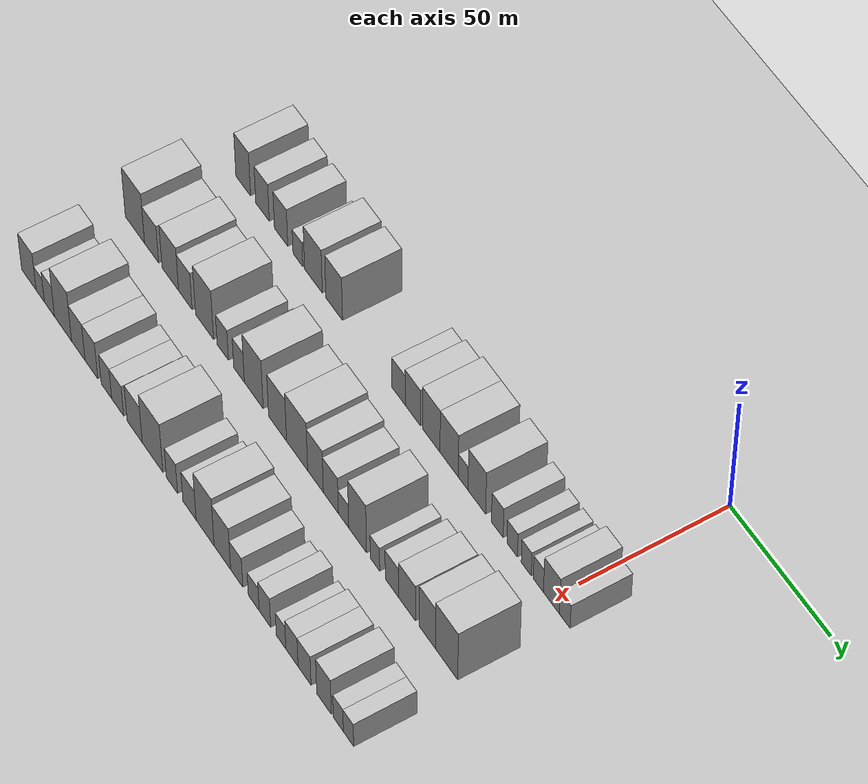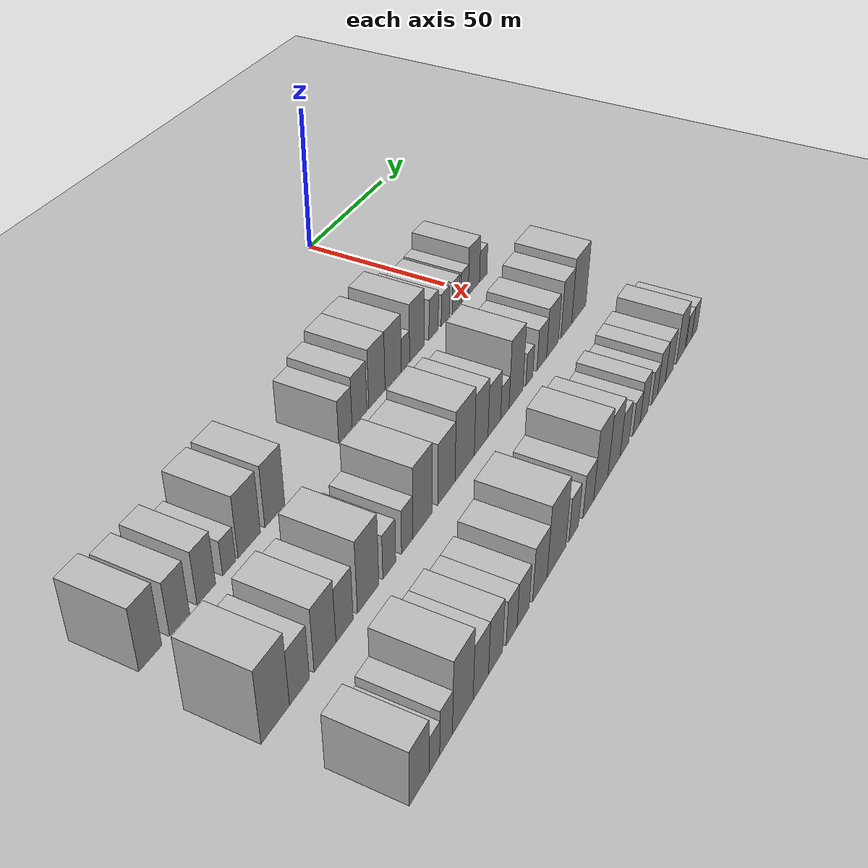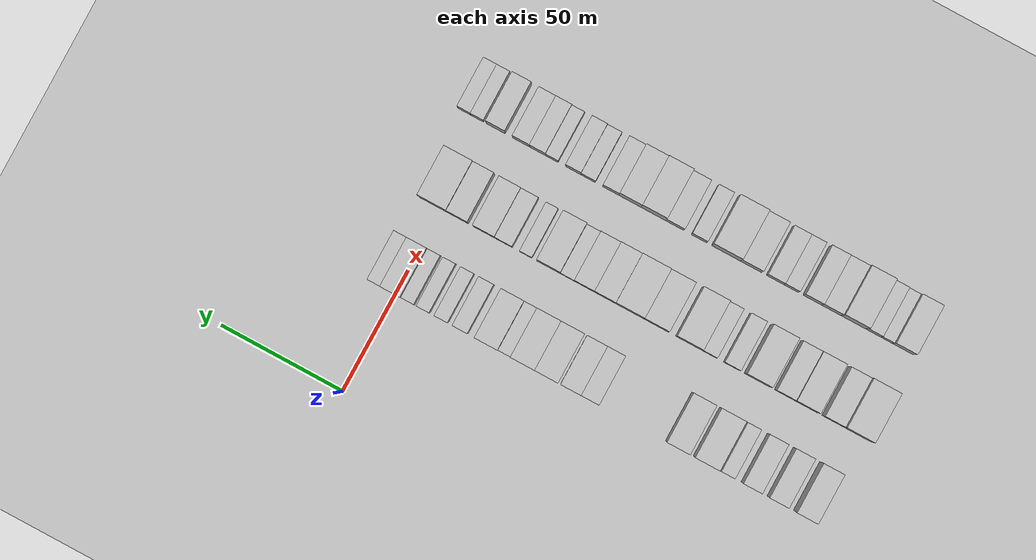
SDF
<sdf version="1.6">
 <world name="default">
  <include><name>ground_plane_1</name><uri>model://HANNAS_ground_plane</uri></include>
  <include>
   <name>ground_plane_2</name>
   <uri>model://HANNAS_ground_plane</uri>
   <pose>100 0 0  0 0 0</pose>
  </include>
  <model name="building_20">
   <static>1</static>
   <pose>50.0000 -167.8782 0 0.000000 0.000000 0.000000</pose>
   <link name="link">
    <pose>0 0 10.50 0 0 0</pose>
    <collision name="collision"><geometry><box><size>20.0000 8.5677 21.0000</size></box></geometry></collision>
    <visual name="visual">
     <cast_shadows>0</cast_shadows>
     <geometry><box><size>20.0000 8.5677 21.0000</size></box></geometry>
     <material>
      <script>
       <uri>model://HANNAS_wall/materials/scripts</uri>
       <uri>model://HANNAS_wall/materials/textures</uri>
       <name>vrc/HANNAS_wall</name>
      </script>
     </material>
    </visual>
   </link>
  </model>
  <model name="building_21">
   <static>1</static>
   <pose>50.0000 -156.6761 0 0.000000 0.000000 0.000000</pose>
   <link name="link">
    <pose>0 0 9.00 0 0 0</pose>
    <collision name="collision"><geometry><box><size>20.0000 7.8365 18.0000</size></box></geometry></collision>
    <visual name="visual">
     <cast_shadows>0</cast_shadows>
     <geometry><box><size>20.0000 7.8365 18.0000</size></box></geometry>
     <material>
      <script>
       <uri>model://HANNAS_wall/materials/scripts</uri>
       <uri>model://HANNAS_wall/materials/textures</uri>
       <name>vrc/HANNAS_wall</name>
      </script>
     </material>
    </visual>
   </link>
  </model>
  <model name="building_22">
   <static>1</static>
   <pose>50.0000 -145.9216 0 0.000000 0.000000 0.000000</pose>
   <link name="link">
    <pose>0 0 9.00 0 0 0</pose>
    <collision name="collision"><geometry><box><size>20.0000 7.6724 18.0000</size></box></geometry></collision>
    <visual name="visual">
     <cast_shadows>0</cast_shadows>
     <geometry><box><size>20.0000 7.6724 18.0000</size></box></geometry>
     <material>
      <script>
       <uri>model://HANNAS_wall/materials/scripts</uri>
       <uri>model://HANNAS_wall/materials/textures</uri>
       <name>vrc/HANNAS_wall</name>
      </script>
     </material>
    </visual>
   </link>
  </model>
  <model name="building_23">
   <static>1</static>
   <pose>50.0000 -136.2911 0 0.000000 0.000000 0.000000</pose>
   <link name="link">
    <pose>0 0 6.00 0 0 0</pose>
    <collision name="collision"><geometry><box><size>20.0000 5.5886 12.0000</size></box></geometry></collision>
    <visual name="visual">
     <cast_shadows>0</cast_shadows>
     <geometry><box><size>20.0000 5.5886 12.0000</size></box></geometry>
     <material>
      <script>
       <uri>model://HANNAS_wall/materials/scripts</uri>
       <uri>model://HANNAS_wall/materials/textures</uri>
       <name>vrc/HANNAS_wall</name>
      </script>
     </material>
    </visual>
   </link>
  </model>
  <model name="building_24">
   <static>1</static>
   <pose>50.0000 -127.4564 0 0.000000 0.000000 0.000000</pose>
   <link name="link">
    <pose>0 0 10.50 0 0 0</pose>
    <collision name="collision"><geometry><box><size>20.0000 10.0809 21.0000</size></box></geometry></collision>
    <visual name="visual">
     <cast_shadows>0</cast_shadows>
     <geometry><box><size>20.0000 10.0809 21.0000</size></box></geometry>
     <material>
      <script>
       <uri>model://HANNAS_wall/materials/scripts</uri>
       <uri>model://HANNAS_wall/materials/textures</uri>
       <name>vrc/HANNAS_wall</name>
      </script>
     </material>
    </visual>
   </link>
  </model>
  <model name="building_25">
   <static>1</static>
   <pose>50.0000 -115.7088 0 0.000000 0.000000 0.000000</pose>
   <link name="link">
    <pose>0 0 10.50 0 0 0</pose>
    <collision name="collision"><geometry><box><size>20.0000 9.4143 21.0000</size></box></geometry></collision>
    <visual name="visual">
     <cast_shadows>0</cast_shadows>
     <geometry><box><size>20.0000 9.4143 21.0000</size></box></geometry>
     <material>
      <script>
       <uri>model://HANNAS_wall/materials/scripts</uri>
       <uri>model://HANNAS_wall/materials/textures</uri>
       <name>vrc/HANNAS_wall</name>
      </script>
     </material>
    </visual>
   </link>
  </model>
  <model name="building_26">
   <static>1</static>
   <pose>50.0000 -79.9484 0 0.000000 0.000000 0.000000</pose>
   <link name="link">
    <pose>0 0 7.50 0 0 0</pose>
    <collision name="collision"><geometry><box><size>20.0000 7.3688 15.0000</size></box></geometry></collision>
    <visual name="visual">
     <cast_shadows>0</cast_shadows>
     <geometry><box><size>20.0000 7.3688 15.0000</size></box></geometry>
     <material>
      <script>
       <uri>model://HANNAS_wall/materials/scripts</uri>
       <uri>model://HANNAS_wall/materials/textures</uri>
       <name>vrc/HANNAS_wall</name>
      </script>
     </material>
    </visual>
   </link>
  </model>
  <model name="building_27">
   <static>1</static>
   <pose>50.0000 -72.0861 0 0.000000 0.000000 0.000000</pose>
   <link name="link">
    <pose>0 0 9.00 0 0 0</pose>
    <collision name="collision"><geometry><box><size>20.0000 8.3559 18.0000</size></box></geometry></collision>
    <visual name="visual">
     <cast_shadows>0</cast_shadows>
     <geometry><box><size>20.0000 8.3559 18.0000</size></box></geometry>
     <material>
      <script>
       <uri>model://HANNAS_wall/materials/scripts</uri>
       <uri>model://HANNAS_wall/materials/textures</uri>
       <name>vrc/HANNAS_wall</name>
      </script>
     </material>
    </visual>
   </link>
  </model>
  <model name="building_28">
   <static>1</static>
   <pose>50.0000 -62.1377 0 0.000000 0.000000 0.000000</pose>
   <link name="link">
    <pose>0 0 10.50 0 0 0</pose>
    <collision name="collision"><geometry><box><size>20.0000 9.5409 21.0000</size></box></geometry></collision>
    <visual name="visual">
     <cast_shadows>0</cast_shadows>
     <geometry><box><size>20.0000 9.5409 21.0000</size></box></geometry>
     <material>
      <script>
       <uri>model://HANNAS_wall/materials/scripts</uri>
       <uri>model://HANNAS_wall/materials/textures</uri>
       <name>vrc/HANNAS_wall</name>
      </script>
     </material>
    </visual>
   </link>
  </model>
  <model name="building_29">
   <static>1</static>
   <pose>50.0000 -52.4496 0 0.000000 0.000000 0.000000</pose>
   <link name="link">
    <pose>0 0 10.50 0 0 0</pose>
    <collision name="collision"><geometry><box><size>20.0000 9.8351 21.0000</size></box></geometry></collision>
    <visual name="visual">
     <cast_shadows>0</cast_shadows>
     <geometry><box><size>20.0000 9.8351 21.0000</size></box></geometry>
     <material>
      <script>
       <uri>model://HANNAS_wall/materials/scripts</uri>
       <uri>model://HANNAS_wall/materials/textures</uri>
       <name>vrc/HANNAS_wall</name>
      </script>
     </material>
    </visual>
   </link>
  </model>
  <model name="building_30">
   <static>1</static>
   <pose>50.0000 -44.9440 0 0.000000 0.000000 0.000000</pose>
   <link name="link">
    <pose>0 0 6.00 0 0 0</pose>
    <collision name="collision"><geometry><box><size>20.0000 5.1762 12.0000</size></box></geometry></collision>
    <visual name="visual">
     <cast_shadows>0</cast_shadows>
     <geometry><box><size>20.0000 5.1762 12.0000</size></box></geometry>
     <material>
      <script>
       <uri>model://HANNAS_wall/materials/scripts</uri>
       <uri>model://HANNAS_wall/materials/textures</uri>
       <name>vrc/HANNAS_wall</name>
      </script>
     </material>
    </visual>
   </link>
  </model>
  <model name="building_31">
   <static>1</static>
   <pose>50.0000 -37.6500 0 0.000000 0.000000 0.000000</pose>
   <link name="link">
    <pose>0 0 10.50 0 0 0</pose>
    <collision name="collision"><geometry><box><size>20.0000 9.4118 21.0000</size></box></geometry></collision>
    <visual name="visual">
     <cast_shadows>0</cast_shadows>
     <geometry><box><size>20.0000 9.4118 21.0000</size></box></geometry>
     <material>
      <script>
       <uri>model://HANNAS_wall/materials/scripts</uri>
       <uri>model://HANNAS_wall/materials/textures</uri>
       <name>vrc/HANNAS_wall</name>
      </script>
     </material>
    </visual>
   </link>
  </model>
  <model name="building_32">
   <static>1</static>
   <pose>50.0000 -26.8472 0 0.000000 0.000000 0.000000</pose>
   <link name="link">
    <pose>0 0 7.50 0 0 0</pose>
    <collision name="collision"><geometry><box><size>20.0000 6.1937 15.0000</size></box></geometry></collision>
    <visual name="visual">
     <cast_shadows>0</cast_shadows>
     <geometry><box><size>20.0000 6.1937 15.0000</size></box></geometry>
     <material>
      <script>
       <uri>model://HANNAS_wall/materials/scripts</uri>
       <uri>model://HANNAS_wall/materials/textures</uri>
       <name>vrc/HANNAS_wall</name>
      </script>
     </material>
    </visual>
   </link>
  </model>
  <model name="building_33">
   <static>1</static>
   <pose>50.0000 -19.0019 0 0.000000 0.000000 0.000000</pose>
   <link name="link">
    <pose>0 0 6.00 0 0 0</pose>
    <collision name="collision"><geometry><box><size>20.0000 5.4968 12.0000</size></box></geometry></collision>
    <visual name="visual">
     <cast_shadows>0</cast_shadows>
     <geometry><box><size>20.0000 5.4968 12.0000</size></box></geometry>
     <material>
      <script>
       <uri>model://HANNAS_wall/materials/scripts</uri>
       <uri>model://HANNAS_wall/materials/textures</uri>
       <name>vrc/HANNAS_wall</name>
      </script>
     </material>
    </visual>
   </link>
  </model>
  <model name="building_34">
   <static>1</static>
   <pose>50.0000 -11.6341 0 0.000000 0.000000 0.000000</pose>
   <link name="link">
    <pose>0 0 6.00 0 0 0</pose>
    <collision name="collision"><geometry><box><size>20.0000 5.2390 12.0000</size></box></geometry></collision>
    <visual name="visual">
     <cast_shadows>0</cast_shadows>
     <geometry><box><size>20.0000 5.2390 12.0000</size></box></geometry>
     <material>
      <script>
       <uri>model://HANNAS_wall/materials/scripts</uri>
       <uri>model://HANNAS_wall/materials/textures</uri>
       <name>vrc/HANNAS_wall</name>
      </script>
     </material>
    </visual>
   </link>
  </model>
  <model name="building_35">
   <static>1</static>
   <pose>50.0000 -5.3701 0 0.000000 0.000000 0.000000</pose>
   <link name="link">
    <pose>0 0 6.00 0 0 0</pose>
    <collision name="collision"><geometry><box><size>20.0000 5.2889 12.0000</size></box></geometry></collision>
    <visual name="visual">
     <cast_shadows>0</cast_shadows>
     <geometry><box><size>20.0000 5.2889 12.0000</size></box></geometry>
     <material>
      <script>
       <uri>model://HANNAS_wall/materials/scripts</uri>
       <uri>model://HANNAS_wall/materials/textures</uri>
       <name>vrc/HANNAS_wall</name>
      </script>
     </material>
    </visual>
   </link>
  </model>
  <model name="building_36">
   <static>1</static>
   <pose>50.0000 1.3845 0 0.000000 0.000000 0.000000</pose>
   <link name="link">
    <pose>0 0 9.00 0 0 0</pose>
    <collision name="collision"><geometry><box><size>20.0000 8.2204 18.0000</size></box></geometry></collision>
    <visual name="visual">
     <cast_shadows>0</cast_shadows>
     <geometry><box><size>20.0000 8.2204 18.0000</size></box></geometry>
     <material>
      <script>
       <uri>model://HANNAS_wall/materials/scripts</uri>
       <uri>model://HANNAS_wall/materials/textures</uri>
       <name>vrc/HANNAS_wall</name>
      </script>
     </material>
    </visual>
   </link>
  </model>
  <model name="building_37">
   <static>1</static>
   <pose>50.0000 8.2533 0 0.000000 0.000000 0.000000</pose>
   <link name="link">
    <pose>0 0 6.00 0 0 0</pose>
    <collision name="collision"><geometry><box><size>20.0000 5.5172 12.0000</size></box></geometry></collision>
    <visual name="visual">
     <cast_shadows>0</cast_shadows>
     <geometry><box><size>20.0000 5.5172 12.0000</size></box></geometry>
     <material>
      <script>
       <uri>model://HANNAS_wall/materials/scripts</uri>
       <uri>model://HANNAS_wall/materials/textures</uri>
       <name>vrc/HANNAS_wall</name>
      </script>
     </material>
    </visual>
   </link>
  </model>
  <model name="building_99">
   <static>1</static>
   <pose>85.0000 -170.3555 0 0.000000 0.000000 0.000000</pose>
   <link name="link">
    <pose>0 0 12.00 0 0 0</pose>
    <collision name="collision"><geometry><box><size>20.0000 11.4034 24.0000</size></box></geometry></collision>
    <visual name="visual">
     <cast_shadows>0</cast_shadows>
     <geometry><box><size>20.0000 11.4034 24.0000</size></box></geometry>
     <material>
      <script>
       <uri>model://HANNAS_wall/materials/scripts</uri>
       <uri>model://HANNAS_wall/materials/textures</uri>
       <name>vrc/HANNAS_wall</name>
      </script>
     </material>
    </visual>
   </link>
  </model>
  <model name="building_100">
   <static>1</static>
   <pose>85.0000 -160.4917 0 0.000000 0.000000 0.000000</pose>
   <link name="link">
    <pose>0 0 9.00 0 0 0</pose>
    <collision name="collision"><geometry><box><size>20.0000 8.3244 18.0000</size></box></geometry></collision>
    <visual name="visual">
     <cast_shadows>0</cast_shadows>
     <geometry><box><size>20.0000 8.3244 18.0000</size></box></geometry>
     <material>
      <script>
       <uri>model://HANNAS_wall/materials/scripts</uri>
       <uri>model://HANNAS_wall/materials/textures</uri>
       <name>vrc/HANNAS_wall</name>
      </script>
     </material>
    </visual>
   </link>
  </model>
  <model name="building_101">
   <static>1</static>
   <pose>85.0000 -149.4992 0 0.000000 0.000000 0.000000</pose>
   <link name="link">
    <pose>0 0 10.50 0 0 0</pose>
    <collision name="collision"><geometry><box><size>20.0000 9.6605 21.0000</size></box></geometry></collision>
    <visual name="visual">
     <cast_shadows>0</cast_shadows>
     <geometry><box><size>20.0000 9.6605 21.0000</size></box></geometry>
     <material>
      <script>
       <uri>model://HANNAS_wall/materials/scripts</uri>
       <uri>model://HANNAS_wall/materials/textures</uri>
       <name>vrc/HANNAS_wall</name>
      </script>
     </material>
    </visual>
   </link>
  </model>
  <model name="building_102">
   <static>1</static>
   <pose>85.0000 -140.7256 0 0.000000 0.000000 0.000000</pose>
   <link name="link">
    <pose>0 0 9.00 0 0 0</pose>
    <collision name="collision"><geometry><box><size>20.0000 7.8868 18.0000</size></box></geometry></collision>
    <visual name="visual">
     <cast_shadows>0</cast_shadows>
     <geometry><box><size>20.0000 7.8868 18.0000</size></box></geometry>
     <material>
      <script>
       <uri>model://HANNAS_wall/materials/scripts</uri>
       <uri>model://HANNAS_wall/materials/textures</uri>
       <name>vrc/HANNAS_wall</name>
      </script>
     </material>
    </visual>
   </link>
  </model>
  <model name="building_103">
   <static>1</static>
   <pose>85.0000 -129.5812 0 0.000000 0.000000 0.000000</pose>
   <link name="link">
    <pose>0 0 12.00 0 0 0</pose>
    <collision name="collision"><geometry><box><size>20.0000 10.4021 24.0000</size></box></geometry></collision>
    <visual name="visual">
     <cast_shadows>0</cast_shadows>
     <geometry><box><size>20.0000 10.4021 24.0000</size></box></geometry>
     <material>
      <script>
       <uri>model://HANNAS_wall/materials/scripts</uri>
       <uri>model://HANNAS_wall/materials/textures</uri>
       <name>vrc/HANNAS_wall</name>
      </script>
     </material>
    </visual>
   </link>
  </model>
  <model name="building_104">
   <static>1</static>
   <pose>85.0000 -119.1143 0 0.000000 0.000000 0.000000</pose>
   <link name="link">
    <pose>0 0 7.50 0 0 0</pose>
    <collision name="collision"><geometry><box><size>20.0000 6.5318 15.0000</size></box></geometry></collision>
    <visual name="visual">
     <cast_shadows>0</cast_shadows>
     <geometry><box><size>20.0000 6.5318 15.0000</size></box></geometry>
     <material>
      <script>
       <uri>model://HANNAS_wall/materials/scripts</uri>
       <uri>model://HANNAS_wall/materials/textures</uri>
       <name>vrc/HANNAS_wall</name>
      </script>
     </material>
    </visual>
   </link>
  </model>
  <model name="building_105">
   <static>1</static>
   <pose>85.0000 -109.8442 0 0.000000 0.000000 0.000000</pose>
   <link name="link">
    <pose>0 0 7.50 0 0 0</pose>
    <collision name="collision"><geometry><box><size>20.0000 6.0083 15.0000</size></box></geometry></collision>
    <visual name="visual">
     <cast_shadows>0</cast_shadows>
     <geometry><box><size>20.0000 6.0083 15.0000</size></box></geometry>
     <material>
      <script>
       <uri>model://HANNAS_wall/materials/scripts</uri>
       <uri>model://HANNAS_wall/materials/textures</uri>
       <name>vrc/HANNAS_wall</name>
      </script>
     </material>
    </visual>
   </link>
  </model>
  <model name="building_106">
   <static>1</static>
   <pose>85.0000 -101.5194 0 0.000000 0.000000 0.000000</pose>
   <link name="link">
    <pose>0 0 12.00 0 0 0</pose>
    <collision name="collision"><geometry><box><size>20.0000 10.6414 24.0000</size></box></geometry></collision>
    <visual name="visual">
     <cast_shadows>0</cast_shadows>
     <geometry><box><size>20.0000 10.6414 24.0000</size></box></geometry>
     <material>
      <script>
       <uri>model://HANNAS_wall/materials/scripts</uri>
       <uri>model://HANNAS_wall/materials/textures</uri>
       <name>vrc/HANNAS_wall</name>
      </script>
     </material>
    </visual>
   </link>
  </model>
  <model name="building_107">
   <static>1</static>
   <pose>85.0000 -88.1537 0 0.000000 0.000000 0.000000</pose>
   <link name="link">
    <pose>0 0 10.50 0 0 0</pose>
    <collision name="collision"><geometry><box><size>20.0000 10.0900 21.0000</size></box></geometry></collision>
    <visual name="visual">
     <cast_shadows>0</cast_shadows>
     <geometry><box><size>20.0000 10.0900 21.0000</size></box></geometry>
     <material>
      <script>
       <uri>model://HANNAS_wall/materials/scripts</uri>
       <uri>model://HANNAS_wall/materials/textures</uri>
       <name>vrc/HANNAS_wall</name>
      </script>
     </material>
    </visual>
   </link>
  </model>
  <model name="building_108">
   <static>1</static>
   <pose>85.0000 -77.2633 0 0.000000 0.000000 0.000000</pose>
   <link name="link">
    <pose>0 0 12.00 0 0 0</pose>
    <collision name="collision"><geometry><box><size>20.0000 11.6908 24.0000</size></box></geometry></collision>
    <visual name="visual">
     <cast_shadows>0</cast_shadows>
     <geometry><box><size>20.0000 11.6908 24.0000</size></box></geometry>
     <material>
      <script>
       <uri>model://HANNAS_wall/materials/scripts</uri>
       <uri>model://HANNAS_wall/materials/textures</uri>
       <name>vrc/HANNAS_wall</name>
      </script>
     </material>
    </visual>
   </link>
  </model>
  <model name="building_109">
   <static>1</static>
   <pose>85.0000 -67.0947 0 0.000000 0.000000 0.000000</pose>
   <link name="link">
    <pose>0 0 10.50 0 0 0</pose>
    <collision name="collision"><geometry><box><size>20.0000 8.6462 21.0000</size></box></geometry></collision>
    <visual name="visual">
     <cast_shadows>0</cast_shadows>
     <geometry><box><size>20.0000 8.6462 21.0000</size></box></geometry>
     <material>
      <script>
       <uri>model://HANNAS_wall/materials/scripts</uri>
       <uri>model://HANNAS_wall/materials/textures</uri>
       <name>vrc/HANNAS_wall</name>
      </script>
     </material>
    </visual>
   </link>
  </model>
  <model name="building_110">
   <static>1</static>
   <pose>85.0000 -58.6500 0 0.000000 0.000000 0.000000</pose>
   <link name="link">
    <pose>0 0 9.00 0 0 0</pose>
    <collision name="collision"><geometry><box><size>20.0000 8.2433 18.0000</size></box></geometry></collision>
    <visual name="visual">
     <cast_shadows>0</cast_shadows>
     <geometry><box><size>20.0000 8.2433 18.0000</size></box></geometry>
     <material>
      <script>
       <uri>model://HANNAS_wall/materials/scripts</uri>
       <uri>model://HANNAS_wall/materials/textures</uri>
       <name>vrc/HANNAS_wall</name>
      </script>
     </material>
    </visual>
   </link>
  </model>
  <model name="building_111">
   <static>1</static>
   <pose>85.0000 -51.7140 0 0.000000 0.000000 0.000000</pose>
   <link name="link">
    <pose>0 0 6.00 0 0 0</pose>
    <collision name="collision"><geometry><box><size>20.0000 5.6287 12.0000</size></box></geometry></collision>
    <visual name="visual">
     <cast_shadows>0</cast_shadows>
     <geometry><box><size>20.0000 5.6287 12.0000</size></box></geometry>
     <material>
      <script>
       <uri>model://HANNAS_wall/materials/scripts</uri>
       <uri>model://HANNAS_wall/materials/textures</uri>
       <name>vrc/HANNAS_wall</name>
      </script>
     </material>
    </visual>
   </link>
  </model>
  <model name="building_112">
   <static>1</static>
   <pose>85.0000 -44.0653 0 0.000000 0.000000 0.000000</pose>
   <link name="link">
    <pose>0 0 12.00 0 0 0</pose>
    <collision name="collision"><geometry><box><size>20.0000 9.6687 24.0000</size></box></geometry></collision>
    <visual name="visual">
     <cast_shadows>0</cast_shadows>
     <geometry><box><size>20.0000 9.6687 24.0000</size></box></geometry>
     <material>
      <script>
       <uri>model://HANNAS_wall/materials/scripts</uri>
       <uri>model://HANNAS_wall/materials/textures</uri>
       <name>vrc/HANNAS_wall</name>
      </script>
     </material>
    </visual>
   </link>
  </model>
  <model name="building_113">
   <static>1</static>
   <pose>85.0000 -34.6982 0 0.000000 0.000000 0.000000</pose>
   <link name="link">
    <pose>0 0 6.00 0 0 0</pose>
    <collision name="collision"><geometry><box><size>20.0000 5.0654 12.0000</size></box></geometry></collision>
    <visual name="visual">
     <cast_shadows>0</cast_shadows>
     <geometry><box><size>20.0000 5.0654 12.0000</size></box></geometry>
     <material>
      <script>
       <uri>model://HANNAS_wall/materials/scripts</uri>
       <uri>model://HANNAS_wall/materials/textures</uri>
       <name>vrc/HANNAS_wall</name>
      </script>
     </material>
    </visual>
   </link>
  </model>
  <model name="building_114">
   <static>1</static>
   <pose>85.0000 -25.5890 0 0.000000 0.000000 0.000000</pose>
   <link name="link">
    <pose>0 0 7.50 0 0 0</pose>
    <collision name="collision"><geometry><box><size>20.0000 7.1531 15.0000</size></box></geometry></collision>
    <visual name="visual">
     <cast_shadows>0</cast_shadows>
     <geometry><box><size>20.0000 7.1531 15.0000</size></box></geometry>
     <material>
      <script>
       <uri>model://HANNAS_wall/materials/scripts</uri>
       <uri>model://HANNAS_wall/materials/textures</uri>
       <name>vrc/HANNAS_wall</name>
      </script>
     </material>
    </visual>
   </link>
  </model>
  <model name="building_115">
   <static>1</static>
   <pose>85.0000 -17.5531 0 0.000000 0.000000 0.000000</pose>
   <link name="link">
    <pose>0 0 9.00 0 0 0</pose>
    <collision name="collision"><geometry><box><size>20.0000 8.9186 18.0000</size></box></geometry></collision>
    <visual name="visual">
     <cast_shadows>0</cast_shadows>
     <geometry><box><size>20.0000 8.9186 18.0000</size></box></geometry>
     <material>
      <script>
       <uri>model://HANNAS_wall/materials/scripts</uri>
       <uri>model://HANNAS_wall/materials/textures</uri>
       <name>vrc/HANNAS_wall</name>
      </script>
     </material>
    </visual>
   </link>
  </model>
  <model name="building_116">
   <static>1</static>
   <pose>85.0000 -6.8236 0 0.000000 0.000000 0.000000</pose>
   <link name="link">
    <pose>0 0 10.50 0 0 0</pose>
    <collision name="collision"><geometry><box><size>20.0000 8.5403 21.0000</size></box></geometry></collision>
    <visual name="visual">
     <cast_shadows>0</cast_shadows>
     <geometry><box><size>20.0000 8.5403 21.0000</size></box></geometry>
     <material>
      <script>
       <uri>model://HANNAS_wall/materials/scripts</uri>
       <uri>model://HANNAS_wall/materials/textures</uri>
       <name>vrc/HANNAS_wall</name>
      </script>
     </material>
    </visual>
   </link>
  </model>
  <model name="building_117">
   <static>1</static>
   <pose>85.0000 3.2674 0 0.000000 0.000000 0.000000</pose>
   <link name="link">
    <pose>0 0 12.00 0 0 0</pose>
    <collision name="collision"><geometry><box><size>20.0000 11.6418 24.0000</size></box></geometry></collision>
    <visual name="visual">
     <cast_shadows>0</cast_shadows>
     <geometry><box><size>20.0000 11.6418 24.0000</size></box></geometry>
     <material>
      <script>
       <uri>model://HANNAS_wall/materials/scripts</uri>
       <uri>model://HANNAS_wall/materials/textures</uri>
       <name>vrc/HANNAS_wall</name>
      </script>
     </material>
    </visual>
   </link>
  </model>
  <model name="building_182">
   <static>1</static>
   <pose>120.0000 -170.5773 0 0.000000 0.000000 0.000000</pose>
   <link name="link">
    <pose>0 0 9.00 0 0 0</pose>
    <collision name="collision"><geometry><box><size>20.0000 8.6826 18.0000</size></box></geometry></collision>
    <visual name="visual">
     <cast_shadows>0</cast_shadows>
     <geometry><box><size>20.0000 8.6826 18.0000</size></box></geometry>
     <material>
      <script>
       <uri>model://HANNAS_wall/materials/scripts</uri>
       <uri>model://HANNAS_wall/materials/textures</uri>
       <name>vrc/HANNAS_wall</name>
      </script>
     </material>
    </visual>
   </link>
  </model>
  <model name="building_183">
   <static>1</static>
   <pose>120.0000 -163.7563 0 0.000000 0.000000 0.000000</pose>
   <link name="link">
    <pose>0 0 6.00 0 0 0</pose>
    <collision name="collision"><geometry><box><size>20.0000 4.9593 12.0000</size></box></geometry></collision>
    <visual name="visual">
     <cast_shadows>0</cast_shadows>
     <geometry><box><size>20.0000 4.9593 12.0000</size></box></geometry>
     <material>
      <script>
       <uri>model://HANNAS_wall/materials/scripts</uri>
       <uri>model://HANNAS_wall/materials/textures</uri>
       <name>vrc/HANNAS_wall</name>
      </script>
     </material>
    </visual>
   </link>
  </model>
  <model name="building_184">
   <static>1</static>
   <pose>120.0000 -158.2540 0 0.000000 0.000000 0.000000</pose>
   <link name="link">
    <pose>0 0 7.50 0 0 0</pose>
    <collision name="collision"><geometry><box><size>20.0000 6.0453 15.0000</size></box></geometry></collision>
    <visual name="visual">
     <cast_shadows>0</cast_shadows>
     <geometry><box><size>20.0000 6.0453 15.0000</size></box></geometry>
     <material>
      <script>
       <uri>model://HANNAS_wall/materials/scripts</uri>
       <uri>model://HANNAS_wall/materials/textures</uri>
       <name>vrc/HANNAS_wall</name>
      </script>
     </material>
    </visual>
   </link>
  </model>
  <model name="building_185">
   <static>1</static>
   <pose>120.0000 -150.1369 0 0.000000 0.000000 0.000000</pose>
   <link name="link">
    <pose>0 0 12.00 0 0 0</pose>
    <collision name="collision"><geometry><box><size>20.0000 10.1890 24.0000</size></box></geometry></collision>
    <visual name="visual">
     <cast_shadows>0</cast_shadows>
     <geometry><box><size>20.0000 10.1890 24.0000</size></box></geometry>
     <material>
      <script>
       <uri>model://HANNAS_wall/materials/scripts</uri>
       <uri>model://HANNAS_wall/materials/textures</uri>
       <name>vrc/HANNAS_wall</name>
      </script>
     </material>
    </visual>
   </link>
  </model>
  <model name="building_186">
   <static>1</static>
   <pose>120.0000 -141.0854 0 0.000000 0.000000 0.000000</pose>
   <link name="link">
    <pose>0 0 9.00 0 0 0</pose>
    <collision name="collision"><geometry><box><size>20.0000 7.9139 18.0000</size></box></geometry></collision>
    <visual name="visual">
     <cast_shadows>0</cast_shadows>
     <geometry><box><size>20.0000 7.9139 18.0000</size></box></geometry>
     <material>
      <script>
       <uri>model://HANNAS_wall/materials/scripts</uri>
       <uri>model://HANNAS_wall/materials/textures</uri>
       <name>vrc/HANNAS_wall</name>
      </script>
     </material>
    </visual>
   </link>
  </model>
  <model name="building_187">
   <static>1</static>
   <pose>120.0000 -133.3633 0 0.000000 0.000000 0.000000</pose>
   <link name="link">
    <pose>0 0 9.00 0 0 0</pose>
    <collision name="collision"><geometry><box><size>20.0000 7.5303 18.0000</size></box></geometry></collision>
    <visual name="visual">
     <cast_shadows>0</cast_shadows>
     <geometry><box><size>20.0000 7.5303 18.0000</size></box></geometry>
     <material>
      <script>
       <uri>model://HANNAS_wall/materials/scripts</uri>
       <uri>model://HANNAS_wall/materials/textures</uri>
       <name>vrc/HANNAS_wall</name>
      </script>
     </material>
    </visual>
   </link>
  </model>
  <model name="building_188">
   <static>1</static>
   <pose>120.0000 -124.5744 0 0.000000 0.000000 0.000000</pose>
   <link name="link">
    <pose>0 0 7.50 0 0 0</pose>
    <collision name="collision"><geometry><box><size>20.0000 6.0475 15.0000</size></box></geometry></collision>
    <visual name="visual">
     <cast_shadows>0</cast_shadows>
     <geometry><box><size>20.0000 6.0475 15.0000</size></box></geometry>
     <material>
      <script>
       <uri>model://HANNAS_wall/materials/scripts</uri>
       <uri>model://HANNAS_wall/materials/textures</uri>
       <name>vrc/HANNAS_wall</name>
      </script>
     </material>
    </visual>
   </link>
  </model>
  <model name="building_189">
   <static>1</static>
   <pose>120.0000 -118.0461 0 0.000000 0.000000 0.000000</pose>
   <link name="link">
    <pose>0 0 7.50 0 0 0</pose>
    <collision name="collision"><geometry><box><size>20.0000 7.0091 15.0000</size></box></geometry></collision>
    <visual name="visual">
     <cast_shadows>0</cast_shadows>
     <geometry><box><size>20.0000 7.0091 15.0000</size></box></geometry>
     <material>
      <script>
       <uri>model://HANNAS_wall/materials/scripts</uri>
       <uri>model://HANNAS_wall/materials/textures</uri>
       <name>vrc/HANNAS_wall</name>
      </script>
     </material>
    </visual>
   </link>
  </model>
  <model name="building_190">
   <static>1</static>
   <pose>120.0000 -108.1839 0 0.000000 0.000000 0.000000</pose>
   <link name="link">
    <pose>0 0 9.00 0 0 0</pose>
    <collision name="collision"><geometry><box><size>20.0000 8.7152 18.0000</size></box></geometry></collision>
    <visual name="visual">
     <cast_shadows>0</cast_shadows>
     <geometry><box><size>20.0000 8.7152 18.0000</size></box></geometry>
     <material>
      <script>
       <uri>model://HANNAS_wall/materials/scripts</uri>
       <uri>model://HANNAS_wall/materials/textures</uri>
       <name>vrc/HANNAS_wall</name>
      </script>
     </material>
    </visual>
   </link>
  </model>
  <model name="building_191">
   <static>1</static>
   <pose>120.0000 -97.9373 0 0.000000 0.000000 0.000000</pose>
   <link name="link">
    <pose>0 0 12.00 0 0 0</pose>
    <collision name="collision"><geometry><box><size>20.0000 11.7781 24.0000</size></box></geometry></collision>
    <visual name="visual">
     <cast_shadows>0</cast_shadows>
     <geometry><box><size>20.0000 11.7781 24.0000</size></box></geometry>
     <material>
      <script>
       <uri>model://HANNAS_wall/materials/scripts</uri>
       <uri>model://HANNAS_wall/materials/textures</uri>
       <name>vrc/HANNAS_wall</name>
      </script>
     </material>
    </visual>
   </link>
  </model>
  <model name="building_192">
   <static>1</static>
   <pose>120.0000 -86.8822 0 0.000000 0.000000 0.000000</pose>
   <link name="link">
    <pose>0 0 7.50 0 0 0</pose>
    <collision name="collision"><geometry><box><size>20.0000 6.3320 15.0000</size></box></geometry></collision>
    <visual name="visual">
     <cast_shadows>0</cast_shadows>
     <geometry><box><size>20.0000 6.3320 15.0000</size></box></geometry>
     <material>
      <script>
       <uri>model://HANNAS_wall/materials/scripts</uri>
       <uri>model://HANNAS_wall/materials/textures</uri>
       <name>vrc/HANNAS_wall</name>
      </script>
     </material>
    </visual>
   </link>
  </model>
  <model name="building_193">
   <static>1</static>
   <pose>120.0000 -76.9847 0 0.000000 0.000000 0.000000</pose>
   <link name="link">
    <pose>0 0 7.50 0 0 0</pose>
    <collision name="collision"><geometry><box><size>20.0000 7.4630 15.0000</size></box></geometry></collision>
    <visual name="visual">
     <cast_shadows>0</cast_shadows>
     <geometry><box><size>20.0000 7.4630 15.0000</size></box></geometry>
     <material>
      <script>
       <uri>model://HANNAS_wall/materials/scripts</uri>
       <uri>model://HANNAS_wall/materials/textures</uri>
       <name>vrc/HANNAS_wall</name>
      </script>
     </material>
    </visual>
   </link>
  </model>
  <model name="building_194">
   <static>1</static>
   <pose>120.0000 -68.2129 0 0.000000 0.000000 0.000000</pose>
   <link name="link">
    <pose>0 0 12.00 0 0 0</pose>
    <collision name="collision"><geometry><box><size>20.0000 10.0806 24.0000</size></box></geometry></collision>
    <visual name="visual">
     <cast_shadows>0</cast_shadows>
     <geometry><box><size>20.0000 10.0806 24.0000</size></box></geometry>
     <material>
      <script>
       <uri>model://HANNAS_wall/materials/scripts</uri>
       <uri>model://HANNAS_wall/materials/textures</uri>
       <name>vrc/HANNAS_wall</name>
      </script>
     </material>
    </visual>
   </link>
  </model>
  <model name="building_195">
   <static>1</static>
   <pose>120.0000 -58.5978 0 0.000000 0.000000 0.000000</pose>
   <link name="link">
    <pose>0 0 10.50 0 0 0</pose>
    <collision name="collision"><geometry><box><size>20.0000 9.1496 21.0000</size></box></geometry></collision>
    <visual name="visual">
     <cast_shadows>0</cast_shadows>
     <geometry><box><size>20.0000 9.1496 21.0000</size></box></geometry>
     <material>
      <script>
       <uri>model://HANNAS_wall/materials/scripts</uri>
       <uri>model://HANNAS_wall/materials/textures</uri>
       <name>vrc/HANNAS_wall</name>
      </script>
     </material>
    </visual>
   </link>
  </model>
  <model name="building_196">
   <static>1</static>
   <pose>120.0000 -50.6592 0 0.000000 0.000000 0.000000</pose>
   <link name="link">
    <pose>0 0 7.50 0 0 0</pose>
    <collision name="collision"><geometry><box><size>20.0000 6.7275 15.0000</size></box></geometry></collision>
    <visual name="visual">
     <cast_shadows>0</cast_shadows>
     <geometry><box><size>20.0000 6.7275 15.0000</size></box></geometry>
     <material>
      <script>
       <uri>model://HANNAS_wall/materials/scripts</uri>
       <uri>model://HANNAS_wall/materials/textures</uri>
       <name>vrc/HANNAS_wall</name>
      </script>
     </material>
    </visual>
   </link>
  </model>
  <model name="building_197">
   <static>1</static>
   <pose>120.0000 -41.3295 0 0.000000 0.000000 0.000000</pose>
   <link name="link">
    <pose>0 0 6.00 0 0 0</pose>
    <collision name="collision"><geometry><box><size>20.0000 5.9318 12.0000</size></box></geometry></collision>
    <visual name="visual">
     <cast_shadows>0</cast_shadows>
     <geometry><box><size>20.0000 5.9318 12.0000</size></box></geometry>
     <material>
      <script>
       <uri>model://HANNAS_wall/materials/scripts</uri>
       <uri>model://HANNAS_wall/materials/textures</uri>
       <name>vrc/HANNAS_wall</name>
      </script>
     </material>
    </visual>
   </link>
  </model>
  <model name="building_198">
   <static>1</static>
   <pose>120.0000 -35.1882 0 0.000000 0.000000 0.000000</pose>
   <link name="link">
    <pose>0 0 7.50 0 0 0</pose>
    <collision name="collision"><geometry><box><size>20.0000 6.3508 15.0000</size></box></geometry></collision>
    <visual name="visual">
     <cast_shadows>0</cast_shadows>
     <geometry><box><size>20.0000 6.3508 15.0000</size></box></geometry>
     <material>
      <script>
       <uri>model://HANNAS_wall/materials/scripts</uri>
       <uri>model://HANNAS_wall/materials/textures</uri>
       <name>vrc/HANNAS_wall</name>
      </script>
     </material>
    </visual>
   </link>
  </model>
  <model name="building_199">
   <static>1</static>
   <pose>120.0000 -26.4023 0 0.000000 0.000000 0.000000</pose>
   <link name="link">
    <pose>0 0 6.00 0 0 0</pose>
    <collision name="collision"><geometry><box><size>20.0000 5.2211 12.0000</size></box></geometry></collision>
    <visual name="visual">
     <cast_shadows>0</cast_shadows>
     <geometry><box><size>20.0000 5.2211 12.0000</size></box></geometry>
     <material>
      <script>
       <uri>model://HANNAS_wall/materials/scripts</uri>
       <uri>model://HANNAS_wall/materials/textures</uri>
       <name>vrc/HANNAS_wall</name>
      </script>
     </material>
    </visual>
   </link>
  </model>
  <model name="building_200">
   <static>1</static>
   <pose>120.0000 -20.5088 0 0.000000 0.000000 0.000000</pose>
   <link name="link">
    <pose>0 0 7.50 0 0 0</pose>
    <collision name="collision"><geometry><box><size>20.0000 6.5658 15.0000</size></box></geometry></collision>
    <visual name="visual">
     <cast_shadows>0</cast_shadows>
     <geometry><box><size>20.0000 6.5658 15.0000</size></box></geometry>
     <material>
      <script>
       <uri>model://HANNAS_wall/materials/scripts</uri>
       <uri>model://HANNAS_wall/materials/textures</uri>
       <name>vrc/HANNAS_wall</name>
      </script>
     </material>
    </visual>
   </link>
  </model>
  <model name="building_201">
   <static>1</static>
   <pose>120.0000 -13.7391 0 0.000000 0.000000 0.000000</pose>
   <link name="link">
    <pose>0 0 7.50 0 0 0</pose>
    <collision name="collision"><geometry><box><size>20.0000 6.9735 15.0000</size></box></geometry></collision>
    <visual name="visual">
     <cast_shadows>0</cast_shadows>
     <geometry><box><size>20.0000 6.9735 15.0000</size></box></geometry>
     <material>
      <script>
       <uri>model://HANNAS_wall/materials/scripts</uri>
       <uri>model://HANNAS_wall/materials/textures</uri>
       <name>vrc/HANNAS_wall</name>
      </script>
     </material>
    </visual>
   </link>
  </model>
  <model name="building_202">
   <static>1</static>
   <pose>120.0000 -3.3454 0 0.000000 0.000000 0.000000</pose>
   <link name="link">
    <pose>0 0 9.00 0 0 0</pose>
    <collision name="collision"><geometry><box><size>20.0000 7.8139 18.0000</size></box></geometry></collision>
    <visual name="visual">
     <cast_shadows>0</cast_shadows>
     <geometry><box><size>20.0000 7.8139 18.0000</size></box></geometry>
     <material>
      <script>
       <uri>model://HANNAS_wall/materials/scripts</uri>
       <uri>model://HANNAS_wall/materials/textures</uri>
       <name>vrc/HANNAS_wall</name>
      </script>
     </material>
    </visual>
   </link>
  </model>
  <model name="building_203">
   <static>1</static>
   <pose>120.0000 4.2399 0 0.000000 0.000000 0.000000</pose>
   <link name="link">
    <pose>0 0 6.00 0 0 0</pose>
    <collision name="collision"><geometry><box><size>20.0000 5.3566 12.0000</size></box></geometry></collision>
    <visual name="visual">
     <cast_shadows>0</cast_shadows>
     <geometry><box><size>20.0000 5.3566 12.0000</size></box></geometry>
     <material>
      <script>
       <uri>model://HANNAS_wall/materials/scripts</uri>
       <uri>model://HANNAS_wall/materials/textures</uri>
       <name>vrc/HANNAS_wall</name>
      </script>
     </material>
    </visual>
   </link>
  </model>
  <model name="building_204">
   <static>1</static>
   <pose>120.0000 9.6437 0 0.000000 0.000000 0.000000</pose>
   <link name="link">
    <pose>0 0 6.00 0 0 0</pose>
    <collision name="collision"><geometry><box><size>20.0000 5.4511 12.0000</size></box></geometry></collision>
    <visual name="visual">
     <cast_shadows>0</cast_shadows>
     <geometry><box><size>20.0000 5.4511 12.0000</size></box></geometry>
     <material>
      <script>
       <uri>model://HANNAS_wall/materials/scripts</uri>
       <uri>model://HANNAS_wall/materials/textures</uri>
       <name>vrc/HANNAS_wall</name>
      </script>
     </material>
    </visual>
   </link>
  </model>
 </world>
</sdf>
